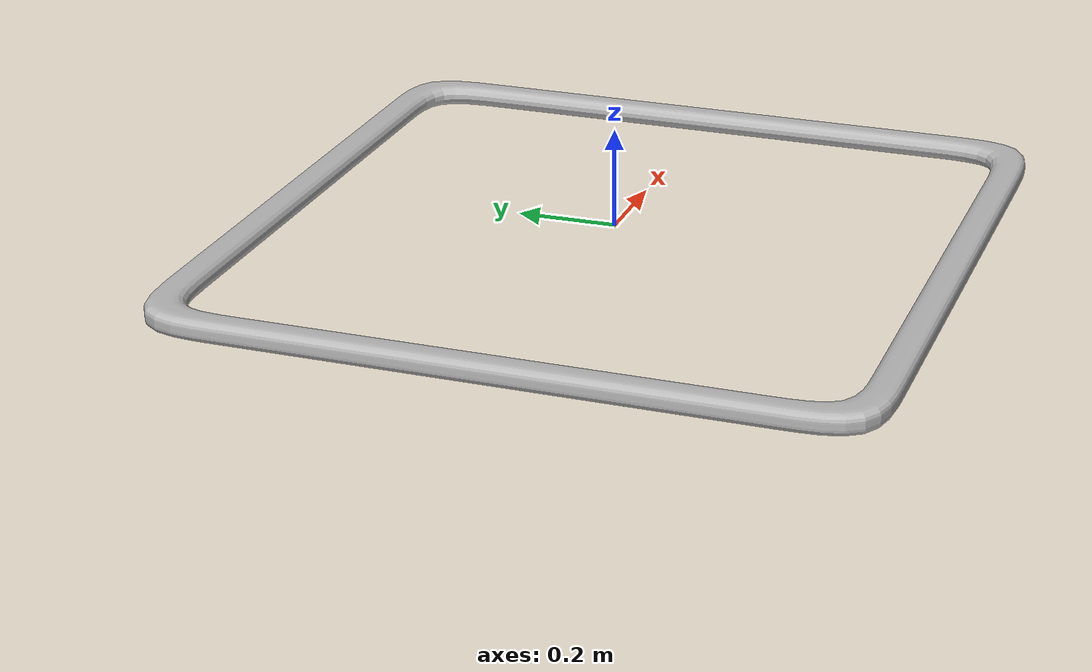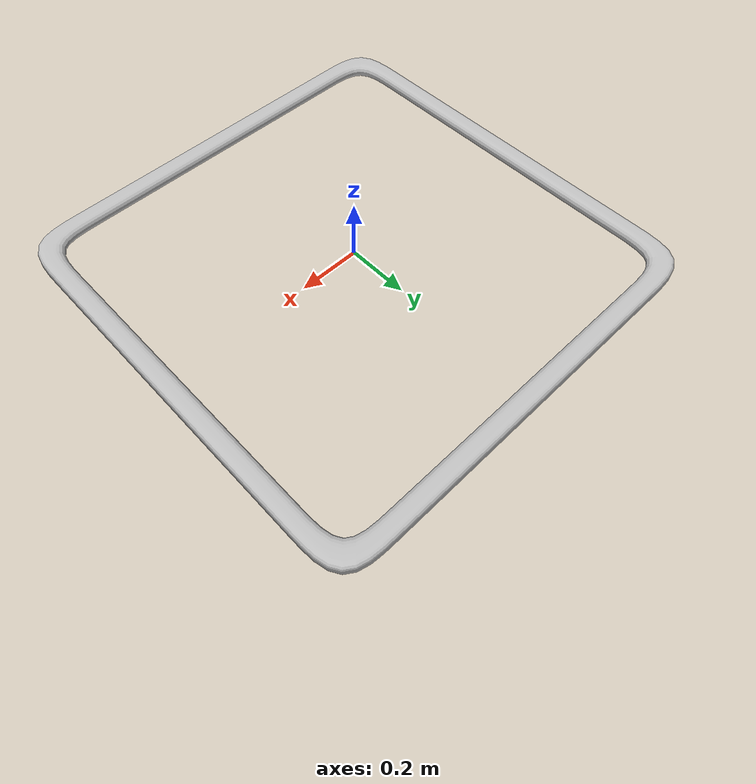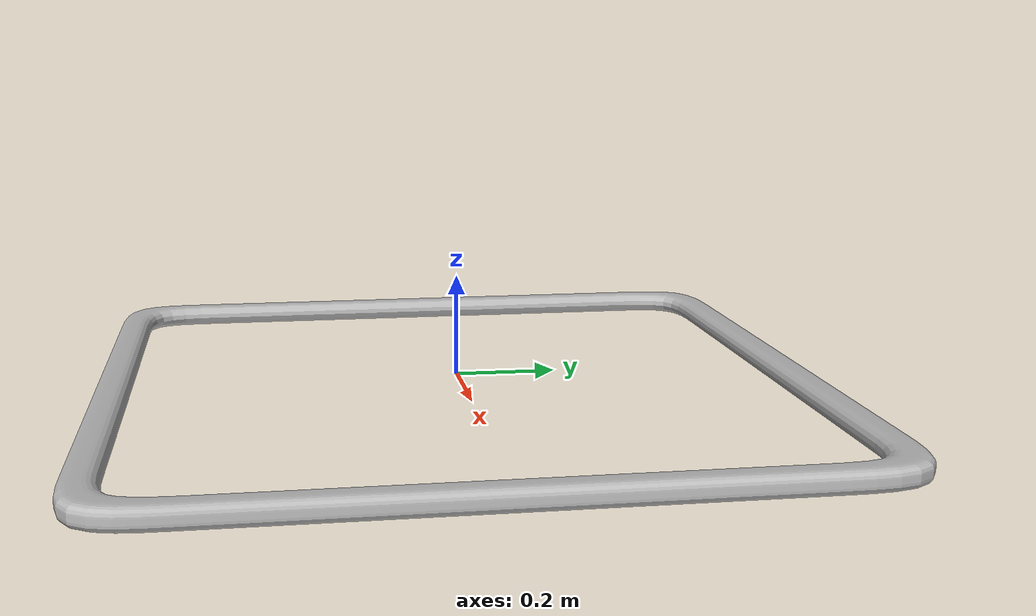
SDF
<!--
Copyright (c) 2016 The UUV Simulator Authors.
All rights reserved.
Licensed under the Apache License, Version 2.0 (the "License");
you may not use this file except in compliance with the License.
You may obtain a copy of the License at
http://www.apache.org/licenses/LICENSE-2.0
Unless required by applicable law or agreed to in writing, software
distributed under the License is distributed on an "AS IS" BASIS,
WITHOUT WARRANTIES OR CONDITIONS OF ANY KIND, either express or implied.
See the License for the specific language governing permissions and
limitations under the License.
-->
<?xml version="1.0" ?>
<sdf version="1.5">
  <model name="starting_zone">
    <static>true</static>
    <link name="link">
      <collision name="starting_square_geom">
        <pose>0 0 0 0 0 0</pose>
        <geometry>
          <mesh>
            <uri>model://starting_zone/meshes/startingsquare.dae</uri>
          </mesh>
        </geometry>
      </collision>
      <visual name="starting_square">
        <cast_shadows>true</cast_shadows>
        <pose>0 0 0 0 0 0</pose>
        <geometry>
          <mesh>
            <uri>model://starting_zone/meshes/startingsquare.dae</uri>
          </mesh>
        </geometry>
      </visual>
    </link>
  </model>
</sdf>
